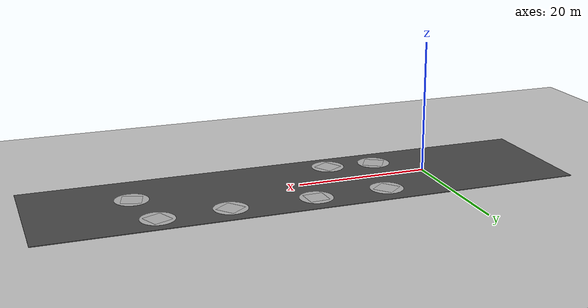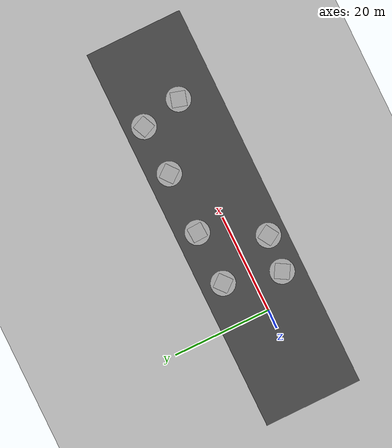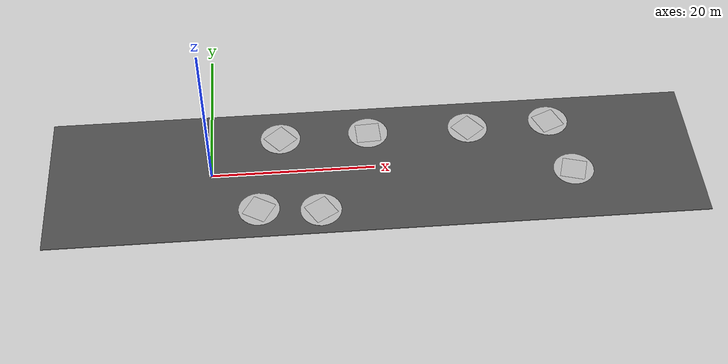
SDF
<sdf version="1.6">
 <world name="default">
  <include><uri>model://sun</uri><pose>0 0 10 0 -0 0</pose></include>
  <include><uri>model://ground_plane</uri></include>
  <model name="asphalt_plane">
   <pose>20 0 0 0 -0 0</pose>
   <static>1</static>
   <link name="link">
    <collision name="collision"><geometry><box><size>80 20 0.1</size></box></geometry></collision>
    <visual name="visual">
     <cast_shadows>0</cast_shadows>
     <geometry><box><size>80 20 0.1</size></box></geometry>
     <material>
      <script>
       <uri>model://asphalt_plane/materials/scripts</uri>
       <uri>model://asphalt_plane/materials/textures</uri>
       <name>vrc/asphalt</name>
      </script>
     </material>
    </visual>
   </link>
  </model>
  <include>
   <name>landmark_1_1</name>
   <uri>model://landmark_1</uri>
   <pose>19.635 5.74933 0.06 0 -0 0.049151</pose>
  </include>
  <include>
   <name>landmark_1_2</name>
   <uri>model://landmark_1</uri>
   <pose>8.58402 5.55658 0.06 0 0 -0.865947</pose>
  </include>
  <include>
   <name>landmark_1_3</name>
   <uri>model://landmark_1</uri>
   <pose>42.6658 6.06562 0.06 0 0 -1.15239</pose>
  </include>
  <include>
   <name>landmark_1_4</name>
   <uri>model://landmark_1</uri>
   <pose>44.5288 -2.29928 0.059996 -7e-06 -6e-06 1.29099</pose>
  </include>
  <include>
   <name>landmark_2</name>
   <uri>model://landmark_2</uri>
   <pose>13.1113 -6.41431 0.06 0 -0 2.11537</pose>
  </include>
  <include>
   <name>landmark_3_1</name>
   <uri>model://landmark_3</uri>
   <pose>32.2909 5.65871 0.06 0 -0 0.676559</pose>
  </include>
  <include>
   <name>landmark_3_2</name>
   <uri>model://landmark_3</uri>
   <pose>5.6589 -5.77184 0.05999 0 -0 2.60971</pose>
  </include>
  <physics name="default_physics" default="0" type="ode">
   <ode>
    <solver>
     <type>quick</type>
     <iters>10</iters>
     <sor>1.3</sor>
     <use_dynamic_moi_rescaling>0</use_dynamic_moi_rescaling>
    </solver>
    <constraints>
     <cfm>0</cfm>
     <erp>0.2</erp>
     <contact_max_correcting_vel>100</contact_max_correcting_vel>
     <contact_surface_layer>0.001</contact_surface_layer>
    </constraints>
   </ode>
   <max_step_size>0.004</max_step_size>
   <real_time_factor>1</real_time_factor>
   <real_time_update_rate>250</real_time_update_rate>
  </physics>
  <gravity>0 0 -9.8066</gravity>
  <magnetic_field>6e-06 2.3e-05 -4.2e-05</magnetic_field>
  <atmosphere type="adiabatic"/>
  <scene><ambient>0.4 0.4 0.4 1</ambient><background>0.7 0.7 0.7 1</background><shadows>1</shadows></scene>
  <spherical_coordinates>
   <surface_model>EARTH_WGS84</surface_model>
   <latitude_deg>0</latitude_deg>
   <longitude_deg>0</longitude_deg>
   <elevation>0</elevation>
   <heading_deg>0</heading_deg>
  </spherical_coordinates>
 </world>
</sdf>

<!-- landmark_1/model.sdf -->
<sdf version="1.5">
  <model name="landmark_1">
    <static>1</static>
    <link name="link1">
      <pose>0 0 0 0 0 0</pose>
      <inertial>
        <mass>0.390</mass>
        <inertia>
          <ixx>0</ixx>
          <ixy>0</ixy>
          <ixz>0</ixz>
          <iyy>0</iyy>
          <iyz>0</iyz>
          <izz>0</izz>
        </inertia>
      </inertial>
      <collision name="collision">
        <geometry>
          <cylinder>
            <radius>2.5</radius>
            <length>0.01</length>
          </cylinder>
        </geometry>
      </collision>
      <visual name="visual">
        <geometry>
          <cylinder>
            <radius>2.5</radius>
            <length>0.01</length>
          </cylinder>
        </geometry>
        <material>
          <script>
            <uri>model://landmark_1/materials/scripts</uri>
            <uri>model://landmark_1/materials/textures</uri>
            <name>Land/Diffuse_1</name>
          </script>
        </material>
      </visual>
    </link>

    <static>1</static>
    <link name='link2'>
      <pose>0 0 0 0 0 0</pose>
      <inertial>
        <mass>0.490</mass>
        <inertia>
          <ixx>0</ixx>
          <ixy>0</ixy>
          <ixz>0</ixz>
          <iyy>0</iyy>
          <iyz>0</iyz>
          <izz>0</izz>
        </inertia>
      </inertial>
      <collision name='collision'>
        <geometry>
           <box>
            <size>3.0 3.0 0.011</size>
           </box>
        </geometry>
      </collision>
      <visual name='visual'>
        <geometry>
           <box>
            <size>3.0 3.0 0.011</size>
           </box>
        </geometry>
        <material>
          <script>
            <uri>model://landmark_1/materials/scripts</uri>
            <uri>model://landmark_1/materials/textures</uri>
            <name>Mark/Diffuse_1</name>
          </script>
        </material>
      </visual>
    </link>
  </model>
</sdf>

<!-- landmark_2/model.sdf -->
<sdf version="1.5">
  <model name="landmark_2">
    <static>1</static>
    <link name="link1">
      <pose>0 0 0 0 0 0</pose>
      <inertial>
        <mass>0.390</mass>
        <inertia>
          <ixx>0</ixx>
          <ixy>0</ixy>
          <ixz>0</ixz>
          <iyy>0</iyy>
          <iyz>0</iyz>
          <izz>0</izz>
        </inertia>
      </inertial>
      <collision name="collision">
        <geometry>
          <cylinder>
            <radius>2.5</radius>
            <length>0.01</length>
          </cylinder>
        </geometry>
      </collision>
      <visual name="visual">
        <geometry>
          <cylinder>
            <radius>2.5</radius>
            <length>0.01</length>
          </cylinder>
        </geometry>
        <material>
          <script>
            <uri>model://landmark_2/materials/scripts</uri>
            <uri>model://landmark_2/materials/textures</uri>
            <name>Land/Diffuse_2</name>
          </script>
        </material>
      </visual>
    </link>

    <static>1</static>
    <link name='link2'>
      <pose>0 0 0 0 0 0</pose>
      <inertial>
        <mass>0.490</mass>
        <inertia>
          <ixx>0</ixx>
          <ixy>0</ixy>
          <ixz>0</ixz>
          <iyy>0</iyy>
          <iyz>0</iyz>
          <izz>0</izz>
        </inertia>
      </inertial>
      <collision name='collision'>
        <geometry>
           <box>
            <size>3.0 3.0 0.011</size>
           </box>
        </geometry>
      </collision>
      <visual name='visual'>
        <geometry>
           <box>
            <size>3.0 3.0 0.011</size>
           </box>
        </geometry>
        <material>
          <script>
            <uri>model://landmark_2/materials/scripts</uri>
            <uri>model://landmark_2/materials/textures</uri>
            <name>Mark/Diffuse_2</name>
          </script>
        </material>
      </visual>
    </link>
  </model>
</sdf>

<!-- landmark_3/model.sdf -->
<sdf version="1.5">
  <model name="landmark_3">
    <static>1</static>
    <link name="link1">
      <pose>0 0 0 0 0 0</pose>
      <inertial>
        <mass>0.390</mass>
        <inertia>
          <ixx>0</ixx>
          <ixy>0</ixy>
          <ixz>0</ixz>
          <iyy>0</iyy>
          <iyz>0</iyz>
          <izz>0</izz>
        </inertia>
      </inertial>
      <collision name="collision">
        <geometry>
          <cylinder>
            <radius>2.5</radius>
            <length>0.01</length>
          </cylinder>
        </geometry>
      </collision>
      <visual name="visual">
        <geometry>
          <cylinder>
            <radius>2.5</radius>
            <length>0.01</length>
          </cylinder>
        </geometry>
        <material>
          <script>
            <uri>model://landmark_3/materials/scripts</uri>
            <uri>model://landmark_3/materials/textures</uri>
            <name>Land/Diffuse_3</name>
          </script>
        </material>
      </visual>
    </link>

    <static>1</static>
    <link name='link2'>
      <pose>0 0 0 0 0 0</pose>
      <inertial>
        <mass>0.490</mass>
        <inertia>
          <ixx>0</ixx>
          <ixy>0</ixy>
          <ixz>0</ixz>
          <iyy>0</iyy>
          <iyz>0</iyz>
          <izz>0</izz>
        </inertia>
      </inertial>
      <collision name='collision'>
        <geometry>
           <box>
            <size>3.0 3.0 0.011</size>
           </box>
        </geometry>
      </collision>
      <visual name='visual'>
        <geometry>
           <box>
            <size>3.0 3.0 0.011</size>
           </box>
        </geometry>
        <material>
          <script>
            <uri>model://landmark_3/materials/scripts</uri>
            <uri>model://landmark_3/materials/textures</uri>
            <name>Mark/Diffuse_3</name>
          </script>
        </material>
      </visual>
    </link>
  </model>
</sdf>
